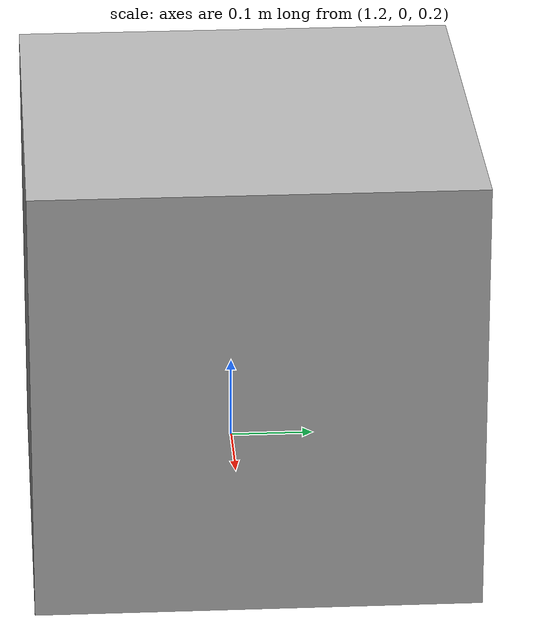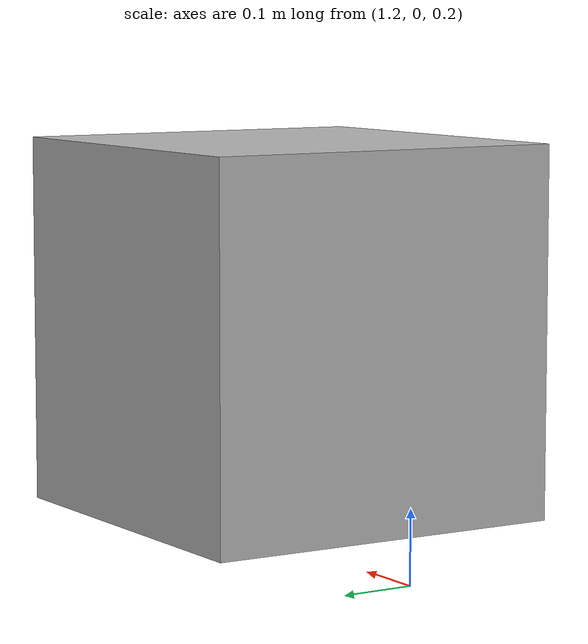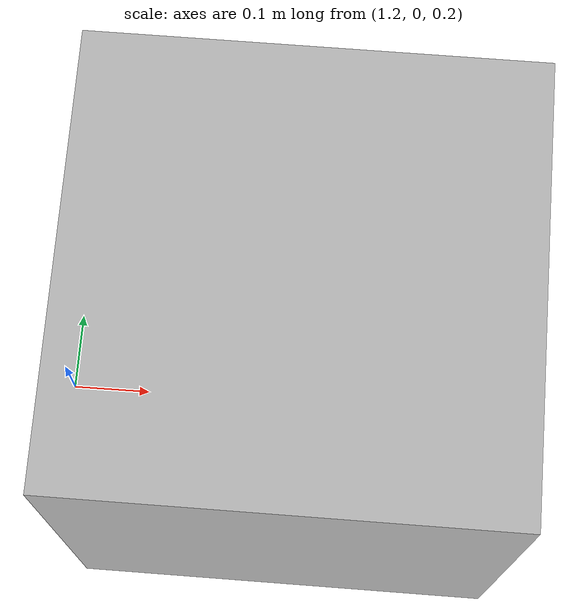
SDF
<?xml version="1.0"?>
<sdf version="1.6">
  <model name="retro_box">
    <static>true</static>
    <link name="link">
      <pose>1.5 0 0.5 0 0 0</pose>
      <collision name="collision">
        <geometry>
          <box><size>0.5 0.5 0.5</size></box>
        </geometry>
        <laser_retro>200</laser_retro>
      </collision>
      <visual name="visual">
        <geometry>
          <box><size>0.5 0.5 0.5</size></box>
        </geometry>
      </visual>
    </link>
  </model>
</sdf>
